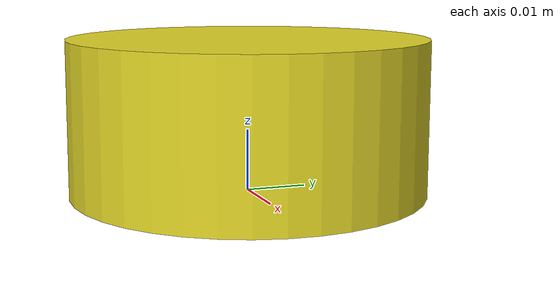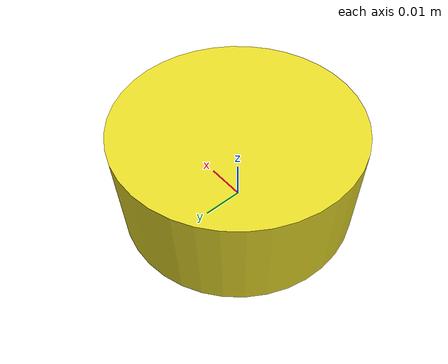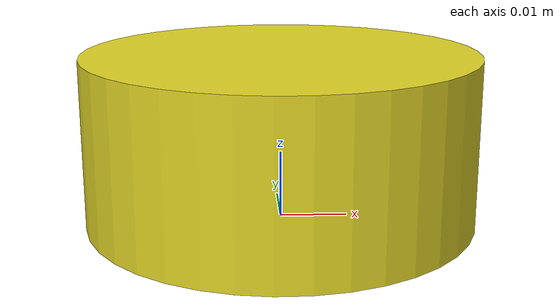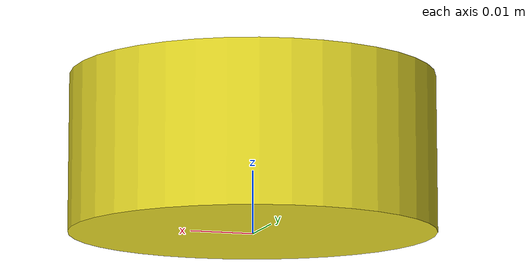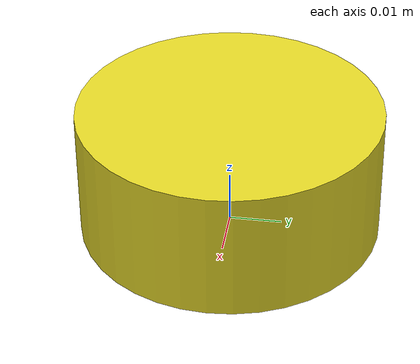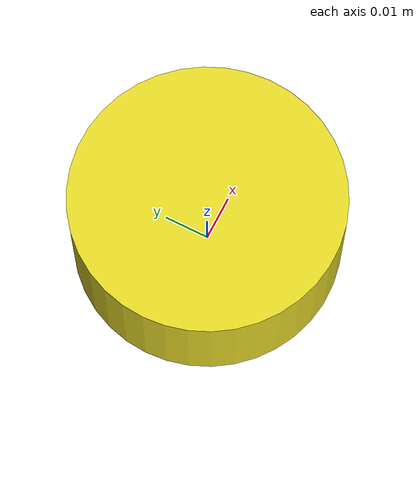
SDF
<sdf version='1.6'>
  <model name='circle'>
    <link name='circle_link'>
      <pose frame=''>0 0 0 0 -0 0</pose>
      <inertial>
        <pose frame=''>0 0 0.025 0 -0 0</pose>
        <mass>0.528416</mass>
        <inertia>
          <ixx>0.000554484</ixx>
          <ixy>-2.40741e-35</ixy>
          <ixz>3.38813e-20</ixz>
          <iyy>0.000554484</iyy>
          <iyz>-2.7849e-21</iyz>
          <izz>0.000888796</izz>
        </inertia>
      </inertial>
      <collision name='circle_link_collision'>
        <pose frame=''>0 0 0 0 -0 0</pose>
        <geometry>
          <mesh>
            <scale>0.5 0.5 0.5</scale>
            <uri>model://circle/meshes/circle_link.STL</uri>
          </mesh>
        </geometry>
      </collision>
      <visual name='circle_link_visual'>
        <pose frame=''>0 0 0 0 -0 0</pose>
        <geometry>
          <mesh>
            <scale>0.5 0.5 0.5</scale>
            <uri>model://circle/meshes/circle_link.STL</uri>
          </mesh>
        </geometry>
        <material>
          <script>
            <name>Gazebo/Yellow</name>
            <uri>file://media/materials/scripts/gazebo.material</uri>
          </script>
        </material>
      </visual>
    </link>
  </model>
</sdf>
